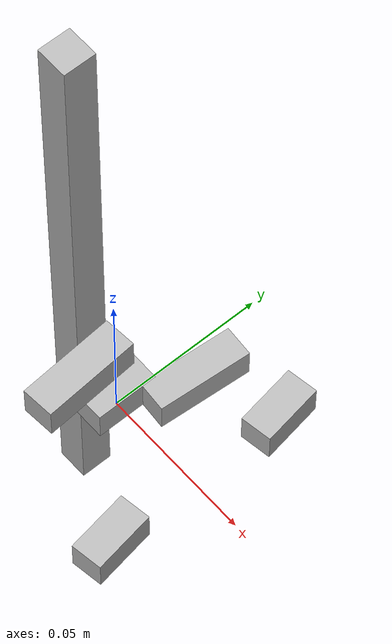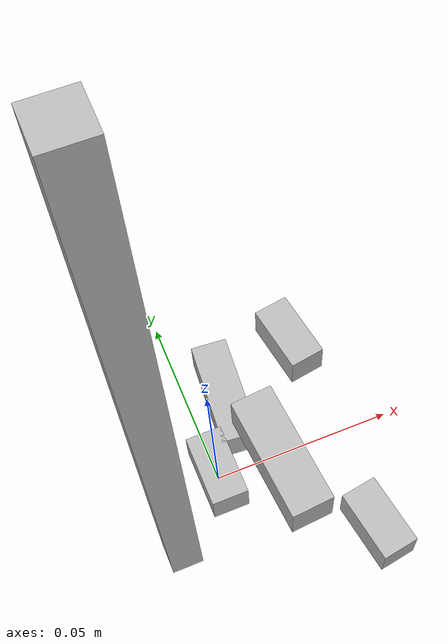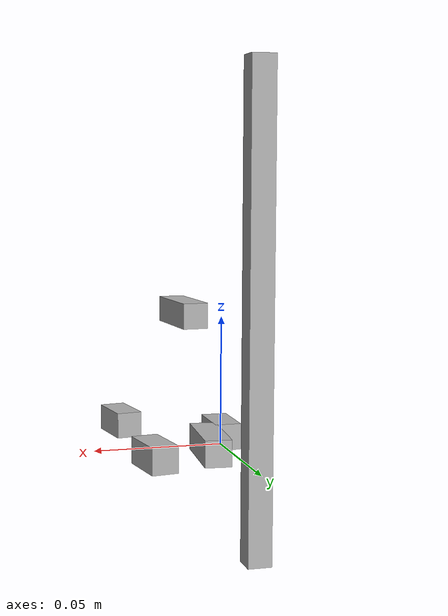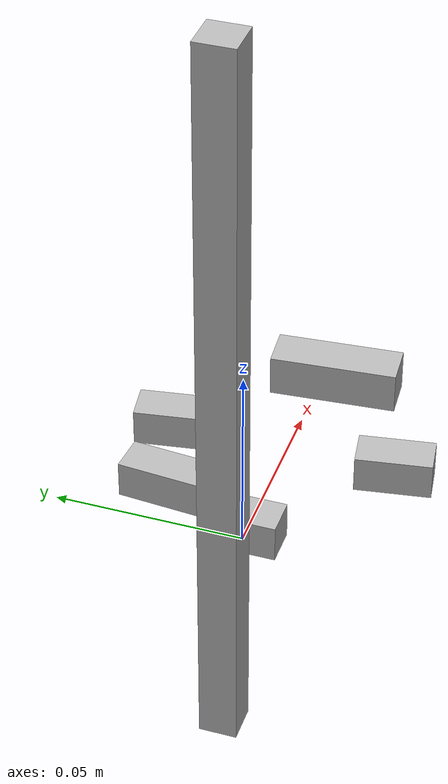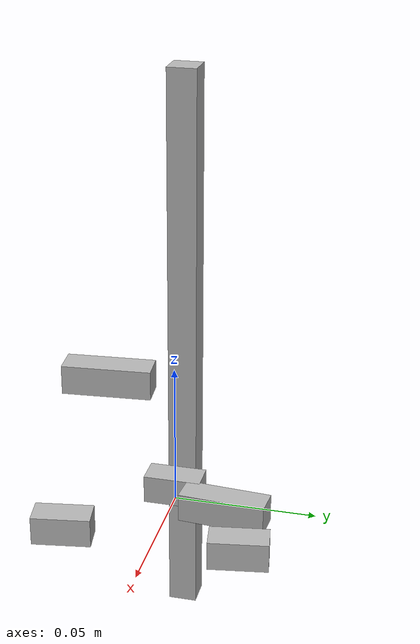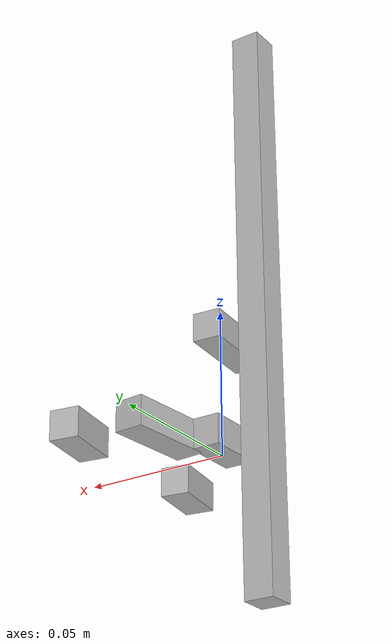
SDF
<?xml version="1.0" ?>
<sdf version="1.5">
  <model name="arm_gripper">
    <link name="riser">
      <pose>-0.015 0.0 0.05 0 0 0</pose>
      <inertial>
        <mass>0.5</mass>
      </inertial>
      <collision name="collision">
        <geometry>
          <box>
            <size>0.01 0.01 0.2</size>
          </box>
        </geometry>
        <surface>
          <contact>
            <ode>
              <max_vel>0.0</max_vel>
            </ode>
          </contact>
        </surface>
      </collision>
      <visual name="visual">
        <geometry>
          <box>
            <size>0.01 0.01 0.2</size>
          </box>
        </geometry>
      </visual>
    </link>
    <link name="palm">
      <pose>0.0 0.0 0.005 0 0 0</pose>
      <inertial>
        <mass>0.05</mass>
      </inertial>
      <collision name="collision">
        <geometry>
          <box>
            <size>0.01 0.02 0.01</size>
          </box>
        </geometry>
        <surface>
          <contact>
            <ode>
              <max_vel>0.0</max_vel>
            </ode>
          </contact>
        </surface>
      </collision>
      <visual name="visual">
        <geometry>
          <box>
            <size>0.01 0.02 0.01</size>
          </box>
        </geometry>
      </visual>
    </link>
    <link name="left_finger">
      <pose>0.01 0.02 0.005 0 0 -0.078539</pose>
      <inertial>
        <mass>0.01</mass>
      </inertial>
      <collision name="collision">
        <geometry>
          <box>
            <size>0.01 0.03 0.01</size>
          </box>
        </geometry>
        <surface>
          <friction>
            <ode>
              <mu>0.1</mu>
              <mu2>0</mu2>
            </ode>
          </friction>
          <contact>
            <ode>
              <max_vel>0.0</max_vel>
            </ode>
          </contact>
        </surface>
      </collision>
      <visual name="visual">
        <geometry>
          <box>
            <size>0.01 0.03 0.01</size>
          </box>
        </geometry>
      </visual>
    </link>
    <link name="left_finger_tip">
      <pose>0.0336 0.03 0.005 0 0 0.15707</pose>
      <inertial>
        <mass>0.5</mass>
      </inertial>
      <collision name="collision">
        <geometry>
          <box>
            <size>0.01 0.02 0.01</size>
          </box>
        </geometry>
        <surface>
          <friction>
            <ode>
              <mu>.1</mu>
              <mu2>0</mu2>
            </ode>
          </friction>
          <contact>
            <ode>
              <max_vel>0.0</max_vel>
            </ode>
          </contact>
        </surface>
      </collision>
      <visual name="visual">
        <geometry>
          <box>
            <size>0.01 0.02 0.01</size>
          </box>
        </geometry>
      </visual>
    </link>
    <link name="right_finger">
      <pose>0.01 -0.02 0.05 0 0 .078539</pose>
      <inertial>
        <mass>0.1</mass>
      </inertial>
      <collision name="collision">
        <geometry>
          <box>
            <size>0.01 0.03 0.01</size>
          </box>
        </geometry>
        <surface>
          <friction>
            <ode>
              <mu>0.1</mu>
              <mu2>0</mu2>
            </ode>
          </friction>
          <contact>
            <ode>
              <max_vel>0.0</max_vel>
            </ode>
          </contact>
        </surface>
      </collision>
      <visual name="visual">
        <geometry>
          <box>
            <size>0.01 0.03 0.01</size>
          </box>
        </geometry>
      </visual>
    </link>
    <link name="right_finger_tip">
      <pose>0.0336 -0.03 0.005 0 0 0.15707</pose>
      <inertial>
        <mass>0.1</mass>
      </inertial>
      <collision name="collision">
        <geometry>
          <box>
            <size>0.01 0.02 0.01</size>
          </box>
        </geometry>
        <surface>
          <friction>
            <ode>
              <mu>0.1</mu>
              <mu2>0</mu2>
            </ode>
          </friction>
          <contact>
            <ode>
              <max_vel>0.0</max_vel>
            </ode>
          </contact>
        </surface>
      </collision>
      <visual name="visual">
        <geometry>
          <box>
            <size>0.01 0.02 0.01</size>
          </box>
        </geometry>
      </visual>
    </link>
    <joint name="palm_left_finger" type="revolute">
      <pose>0 -0.015 0 0 0 0</pose>
      <child>left_finger</child>
      <parent>palm</parent>
      <axis>
        <limit>
          <lower>-0.8</lower>
          <upper>0.8</upper>
        </limit>
        <xyz>0 0 1</xyz>
        <use_parent_model_frame>true</use_parent_model_frame>
      </axis>
    </joint>
    <joint name="left_finger_tip" type="revolute">
      <pose>0 0.01 0 0 0 0</pose>
      <child>left_finger_tip</child>
      <parent>left_finger</parent>
      <axis>
        <limit>
          <lower>-0.8</lower>
          <upper>0.8</upper>
        </limit>
        <xyz>0 0 1</xyz>
        <use_parent_model_frame>true</use_parent_model_frame>
      </axis>
    </joint>
    <joint name="palm_right_finger" type="revolute">
      <pose>0 0.015 0 0 0 0</pose>
      <child>right_finger</child>
      <parent>palm</parent>
      <axis>
        <limit>
          <lower>-0.8</lower>
          <upper>0.8</upper>
        </limit>
        <xyz>0 0 1</xyz>
        <use_parent_model_frame>true</use_parent_model_frame>
      </axis>
    </joint>
    <joint name="right_finger_tip" type="revolute">
      <pose>0 0.01 0 0 0 0</pose>
      <child>right_finger_tip</child>
      <parent>right_finger</parent>
      <axis>
        <limit>
          <lower>-0.8</lower>
          <upper>0.8</upper>
        </limit>
        <xyz>0 0 1</xyz>
        <use_parent_model_frame>true</use_parent_model_frame>
      </axis>
    </joint>
    <joint name="palm_riser" type="fix">
      <child>palm</child>
      <parent>riser</parent>
    </joint>
    <gripper name="simple_gripper">
      <grasp_check>
        <detach_steps>40</detach_steps>
        <attach_steps>20</attach_steps>
        <min_contact_count>2</min_contact_count>
      </grasp_check>
      <gripper_link>right_finger</gripper_link>
      <gripper_link>right_finger_tip</gripper_link>
      <gripper_link>left_finger</gripper_link>
      <gripper_link>left_finger_tip</gripper_link>
      <palm_link>palm</palm_link>
    </gripper>
  </model>
</sdf>
